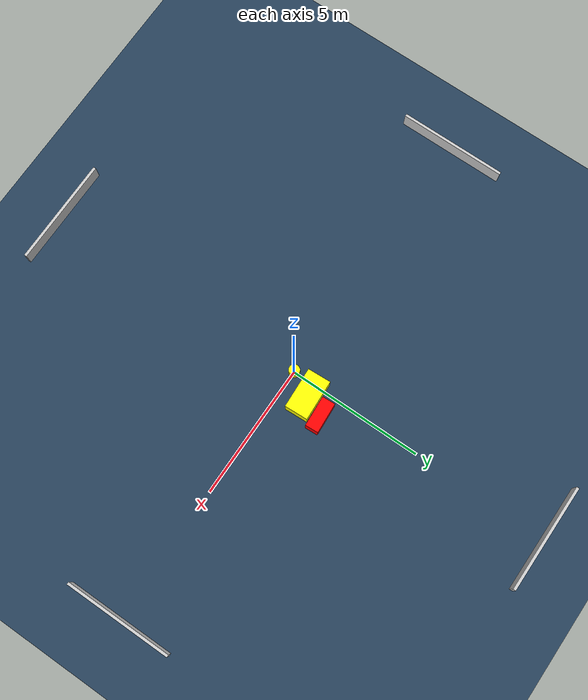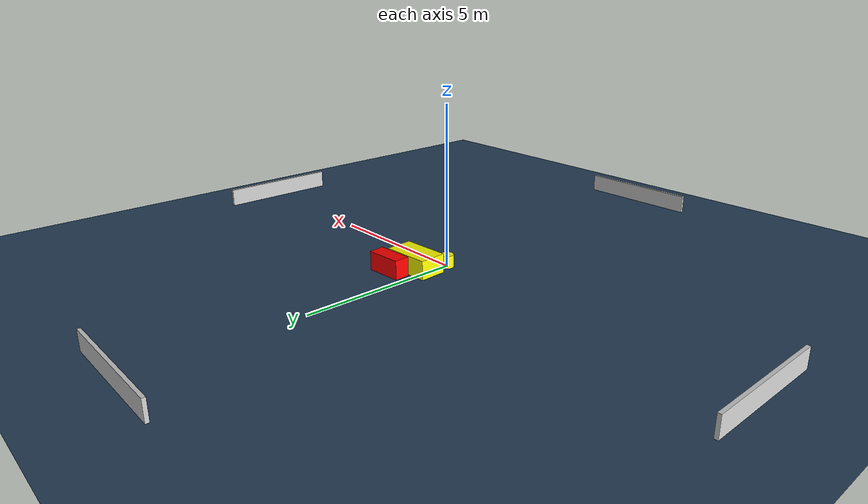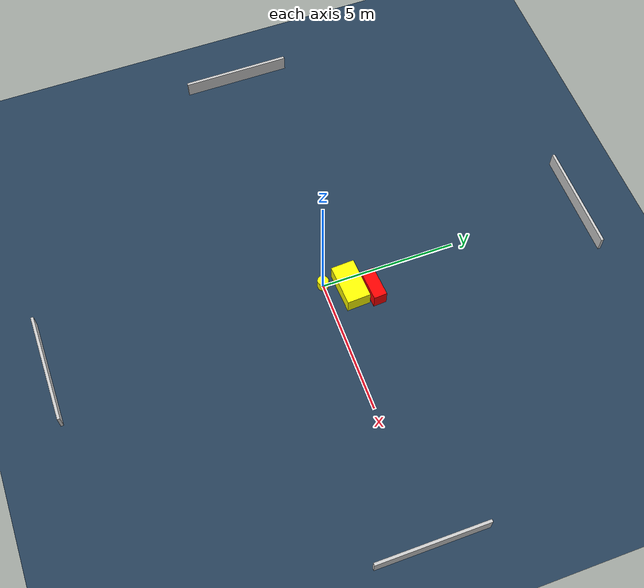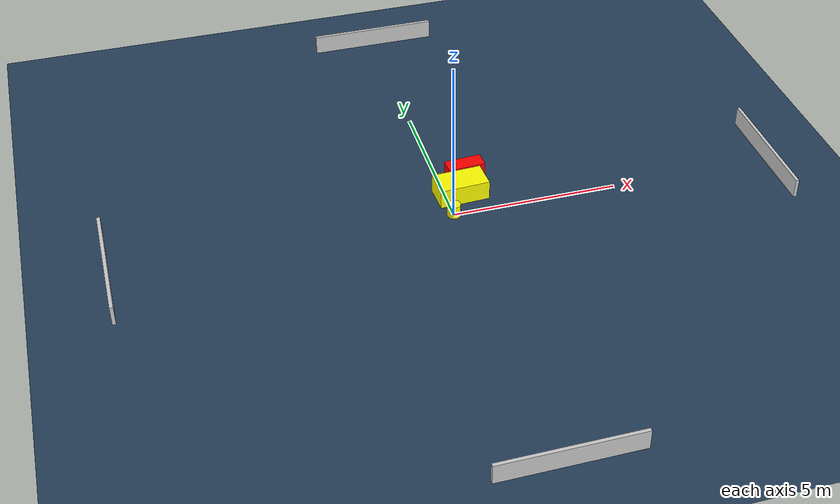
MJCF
<?xml version="1.0" ?>
<mujoco model="generated_environment">
  <option timestep="0.01" integrator="RK4" cone="elliptic"/>
  <default>
    <geom density="1"/>
  </default>
  <asset>
    <texture builtin="gradient" height="3072" name="skybox" rgb1="0.3 0.5 0.7" rgb2="0 0 0" type="skybox" width="512"/>
    <texture builtin="checker" height="300" name="groundplane" rgb1="0.2 0.3 0.4" rgb2="0.1 0.2 0.3" type="2d" width="300"/>
    <material name="groundplane" reflectance="0.2" texrepeat="5 5" texture="groundplane"/>
  </asset>
  <worldbody>
    <light dir="0 0 -1" directional="true" pos="0 0 1.5"/>
    <geom condim="3" friction="0.5 0.005 0.001" material="groundplane" name="floor" pos="0 0 0" size="0 0 0.05" type="plane"/>
    <body name="walls">
      <geom name="wall_1" condim="4" pos="-10.0 0.0 0.3" rgba="0.800000011920929 0.800000011920929 0.800000011920929 1.0" size="0.05 2.0 0.3" type="box"/>
      <geom name="wall_2" condim="4" pos="10.0 0.0 0.3" rgba="0.800000011920929 0.800000011920929 0.800000011920929 1.0" size="0.05 2.0 0.3" type="box"/>
      <geom name="wall_3" condim="4" pos="0.0 -10.0 0.3" rgba="0.800000011920929 0.800000011920929 0.800000011920929 1.0" size="2.0 0.05 0.3" type="box"/>
      <geom name="wall_4" condim="4" pos="0.0 10.0 0.3" rgba="0.800000011920929 0.800000011920929 0.800000011920929 1.0" size="2.0 0.05 0.3" type="box"/>
    </body>
    <body name="robot">
      <joint name="joint_x" type="slide" pos="0 0 0" axis="1 0 0"/>
      <joint name="joint_y" type="slide" pos="0 0 0" axis="0 1 0"/>
      <geom name="robot" type="cylinder" pos="0.0 0.0 0.2" size="0.2 0.2 0.0" mass="5.0" friction="1.0 0.005 0.0001" condim="4" rgba="1.0 1.0 0.0 1.0"/>
    </body>
    <body name="obstacle_1_movable">
      <geom name="obstacle_1_movable" condim="4" pos="0.464524471037973 0.8711624502039814 0.3" euler="0 0 272.7595531411475" friction="0.0 0.005 0.001" rgba="1.0 1.0 0.0 1.0" size="0.43040173878623983 0.7559385762937543 0.3" type="box" mass="0.1"/>
      <joint type="free"/>
    </body>
    <body name="obstacle_2_static">
      <geom name="obstacle_2_static" condim="4" pos="0.8069478643966801 1.6138302686262913 0.3" euler="0 0 273.4595861688504" friction="0.0 0.005 0.001" rgba="1.0 0.0 0.0 1.0" size="0.24231122928854903 0.569040610457076 0.3" type="box"/>
    </body>
  </worldbody>
  <actuator>
    <motor name="actuator_x" joint="joint_x" gear="1" ctrlrange="-1 1"/>
    <motor name="actuator_y" joint="joint_y" gear="1" ctrlrange="-1 1"/>
  </actuator>
</mujoco>
